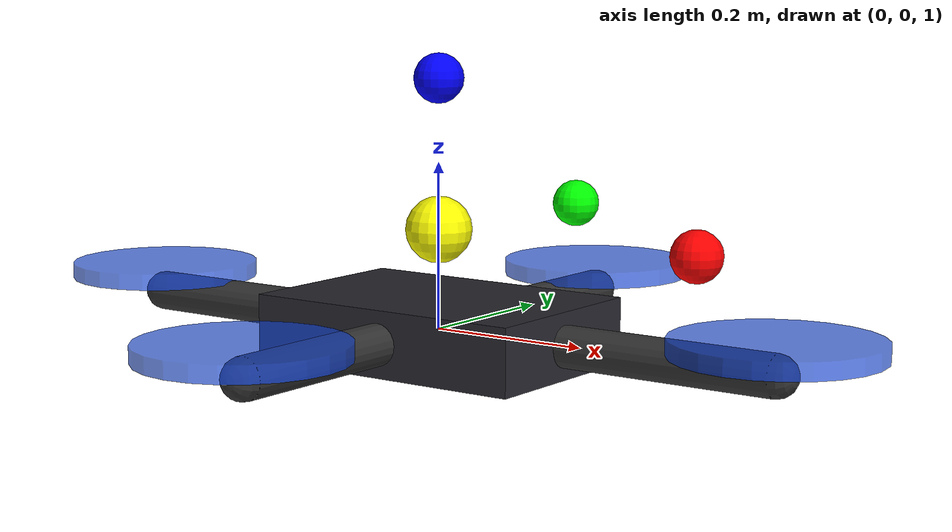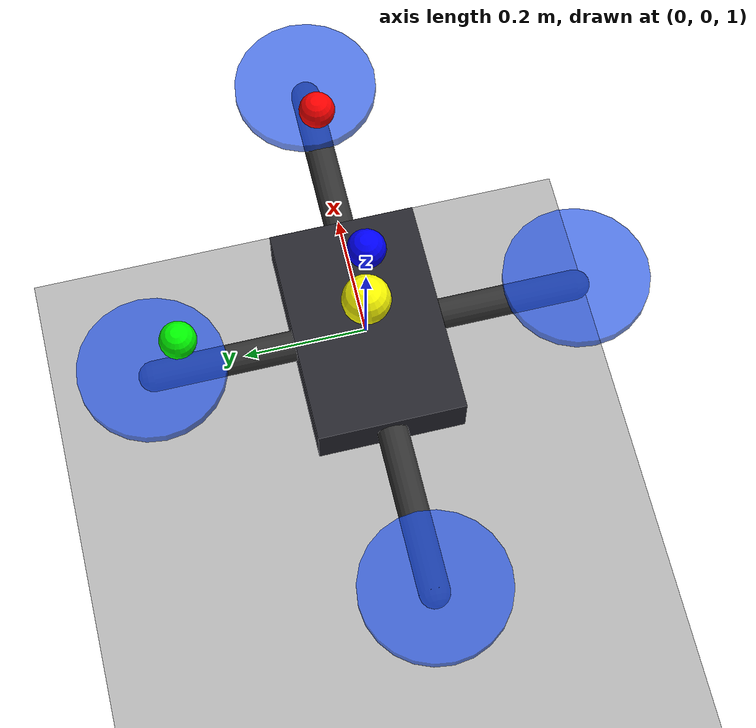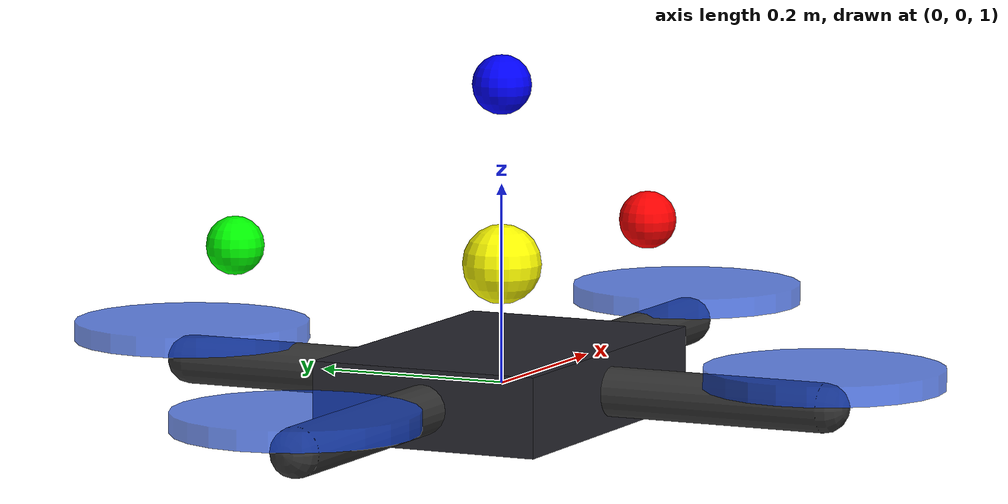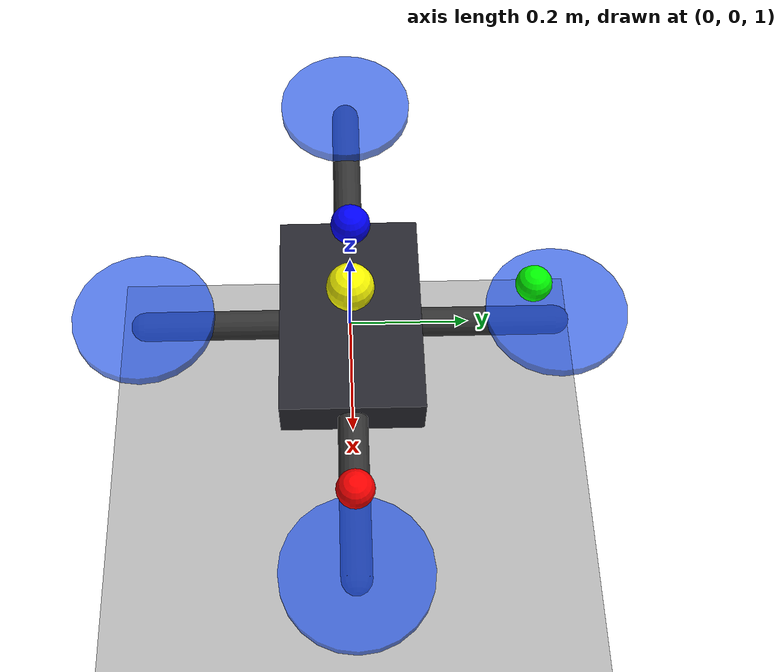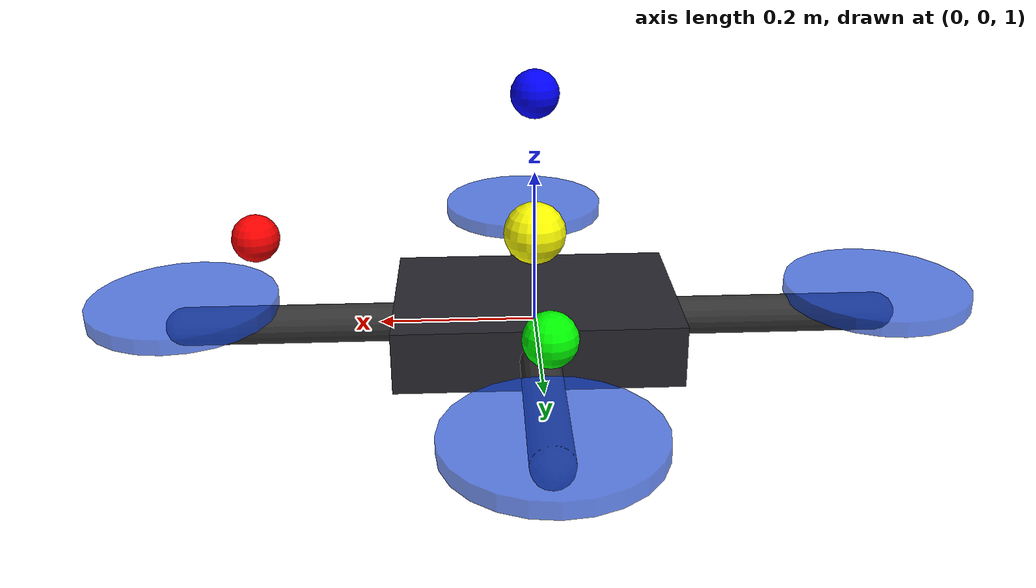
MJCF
<mujoco model="quadrotor">

  <option timestep="0.01"
          gravity="0 0 -9.81"/>

  <visual>
    <headlight diffuse="0.8 0.8 0.8"/>
  </visual>

  <worldbody>

    <!-- Ground -->
    <geom name="floor"
          type="plane"
          size="10 10 0.01"
          rgba="0.7 0.7 0.7 1"/>

    <!-- Quadrotor -->
    <body name="quadrotor"
          pos="0 0 1">

      <freejoint/>

      <!-- Central body -->
      <geom name="body"
            type="box"
            size="0.18 0.12 0.04"
            rgba="0.15 0.15 0.18 1"/>

      <!-- Front arm (+X body) -->
      <geom name="arm_front"
            type="capsule"
            fromto="0 0 0 0.45 0 0"
            size="0.025"
            rgba="0.2 0.2 0.2 1"/>

      <!-- Rear arm (-X body) -->
      <geom name="arm_rear"
            type="capsule"
            fromto="0 0 0 -0.45 0 0"
            size="0.025"
            rgba="0.2 0.2 0.2 1"/>

      <!-- Left arm (+Y body) -->
      <geom name="arm_left"
            type="capsule"
            fromto="0 0 0 0 0.35 0"
            size="0.025"
            rgba="0.2 0.2 0.2 1"/>

      <!-- Right arm (-Y body) -->
      <geom name="arm_right"
            type="capsule"
            fromto="0 0 0 0 -0.35 0"
            size="0.025"
            rgba="0.2 0.2 0.2 1"/>

      <!-- Rotors -->
      <geom name="rotor_front"
            type="cylinder"
            pos="0.45 0 0.03"
            size="0.12 0.01"
            rgba="0.1 0.3 0.9 0.7"/>

      <geom name="rotor_rear"
            type="cylinder"
            pos="-0.45 0 0.03"
            size="0.12 0.01"
            rgba="0.1 0.3 0.9 0.7"/>

      <geom name="rotor_left"
            type="cylinder"
            pos="0 0.35 0.03"
            size="0.12 0.01"
            rgba="0.1 0.3 0.9 0.7"/>

      <geom name="rotor_right"
            type="cylinder"
            pos="0 -0.35 0.03"
            size="0.12 0.01"
            rgba="0.1 0.3 0.9 0.7"/>

      <!-- Body-frame origin -->
      <site name="body_origin"
            pos="0 0 0.12"
            size="0.04"
            rgba="1 1 0 1"/>

      <!-- +X body -->
      <site name="body_x"
            pos="0.35 0 0.12"
            size="0.03"
            rgba="1 0 0 1"/>

      <!-- +Y body -->
      <site name="body_y"
            pos="0 0.30 0.12"
            size="0.03"
            rgba="0 1 0 1"/>

      <!-- +Z body -->
      <site name="body_z"
            pos="0 0 0.30"
            size="0.03"
            rgba="0 0 1 1"/>

    </body>
  </worldbody>

</mujoco>
